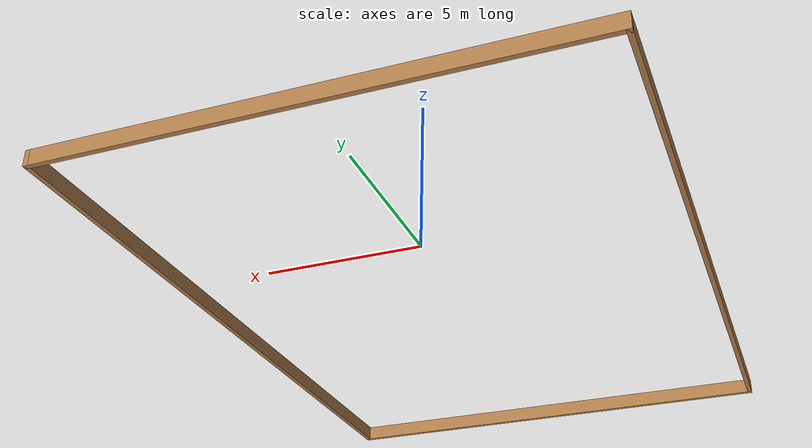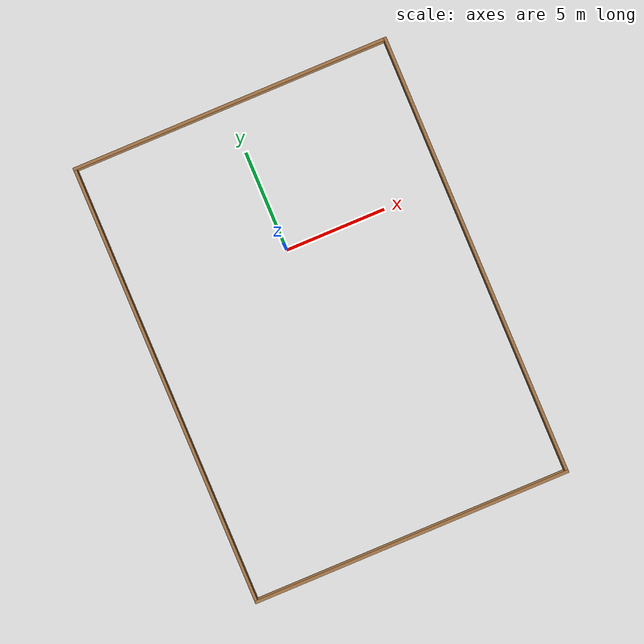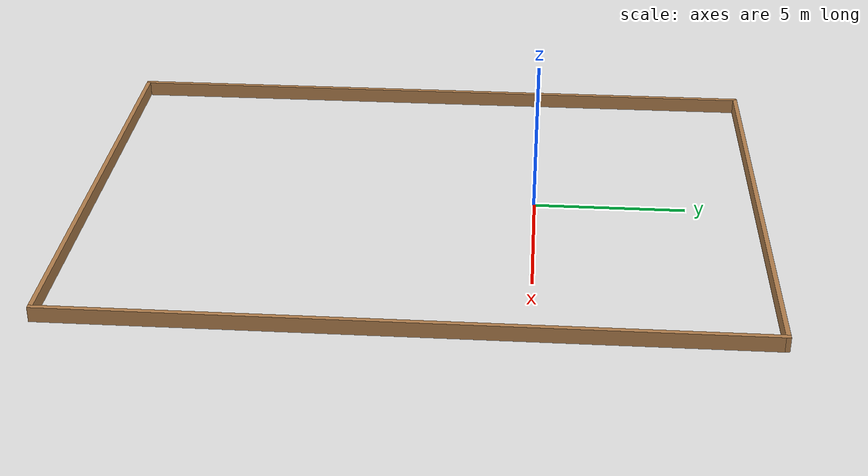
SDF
<?xml version='1.0'?>
<sdf version='1.7'>
  <model name='bardas_madera'>
    <pose>0.193 -3.702 0 0 -0 0</pose>
    <link name='Wall_11'>
      <collision name='Wall_11_Collision'>
        <geometry>
          <box>
            <size>16 0.15 0.5</size>
          </box>
        </geometry>
        <pose>0 0 0.25 0 -0 0</pose>
      </collision>
      <visual name='Wall_11_Visual'>
        <pose>0 0 0.25 0 -0 0</pose>
        <geometry>
          <box>
            <size>16 0.15 0.5</size>
          </box>
        </geometry>
        <material>
          <script>
            <uri>file://media/materials/scripts/gazebo.material</uri>
            <name>Gazebo/Wood</name>
          </script>
          <ambient>1 1 1 1</ambient>
        </material>
        <meta>
          <layer>0</layer>
        </meta>
      </visual>
      <pose>-0 -11.05 0 0 -0 0</pose>
    </link>
    <link name='Wall_12'>
      <collision name='Wall_12_Collision'>
        <geometry>
          <box>
            <size>22.25 0.15 0.5</size>
          </box>
        </geometry>
        <pose>0 0 0.25 0 -0 0</pose>
      </collision>
      <visual name='Wall_12_Visual'>
        <pose>0 0 0.25 0 -0 0</pose>
        <geometry>
          <box>
            <size>22.25 0.15 0.5</size>
          </box>
        </geometry>
        <material>
          <script>
            <uri>file://media/materials/scripts/gazebo.material</uri>
            <name>Gazebo/Wood</name>
          </script>
          <ambient>1 1 1 1</ambient>
        </material>
        <meta>
          <layer>0</layer>
        </meta>
      </visual>
      <pose>7.925 -0 0 0 -0 1.5708</pose>
    </link>
    <link name='Wall_13'>
      <collision name='Wall_13_Collision'>
        <geometry>
          <box>
            <size>16 0.15 0.5</size>
          </box>
        </geometry>
        <pose>0 0 0.25 0 -0 0</pose>
      </collision>
      <visual name='Wall_13_Visual'>
        <pose>0 0 0.25 0 -0 0</pose>
        <geometry>
          <box>
            <size>16 0.15 0.5</size>
          </box>
        </geometry>
        <material>
          <script>
            <uri>file://media/materials/scripts/gazebo.material</uri>
            <name>Gazebo/Wood</name>
          </script>
          <ambient>1 1 1 1</ambient>
        </material>
        <meta>
          <layer>0</layer>
        </meta>
      </visual>
      <pose>-0 11.05 0 0 -0 3.14159</pose>
    </link>
    <link name='Wall_14'>
      <collision name='Wall_14_Collision'>
        <geometry>
          <box>
            <size>22.25 0.15 0.5</size>
          </box>
        </geometry>
        <pose>0 0 0.25 0 -0 0</pose>
      </collision>
      <visual name='Wall_14_Visual'>
        <pose>0 0 0.25 0 -0 0</pose>
        <geometry>
          <box>
            <size>22.25 0.15 0.5</size>
          </box>
        </geometry>
        <material>
          <script>
            <uri>file://media/materials/scripts/gazebo.material</uri>
            <name>Gazebo/Wood</name>
          </script>
          <ambient>1 1 1 1</ambient>
        </material>
        <meta>
          <layer>0</layer>
        </meta>
      </visual>
      <pose>-7.925 -0 0 0 -0 -1.5708</pose>
    </link>
    <static>1</static>
  </model>
</sdf>
